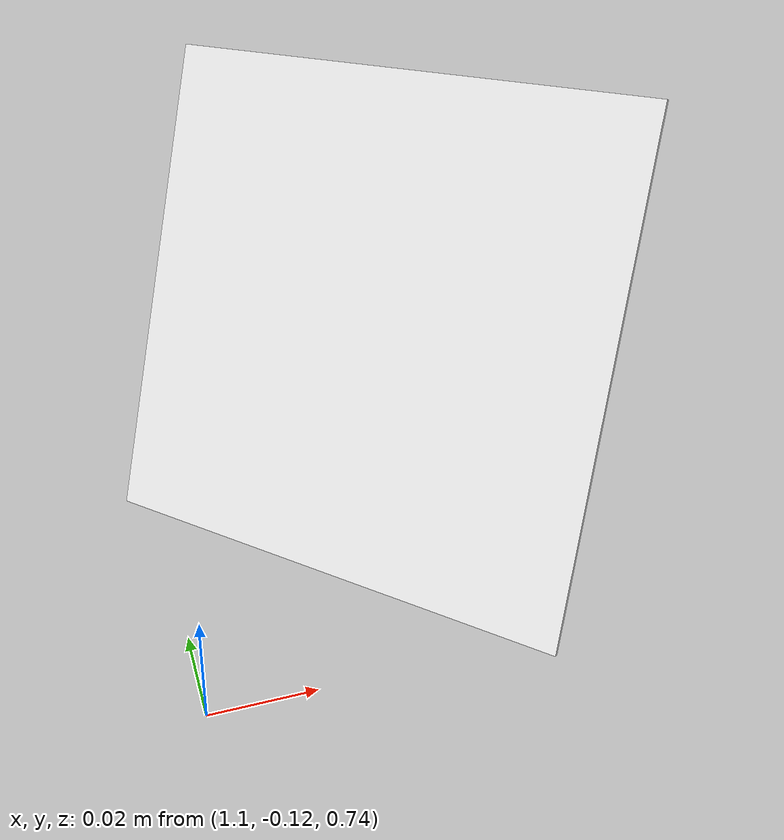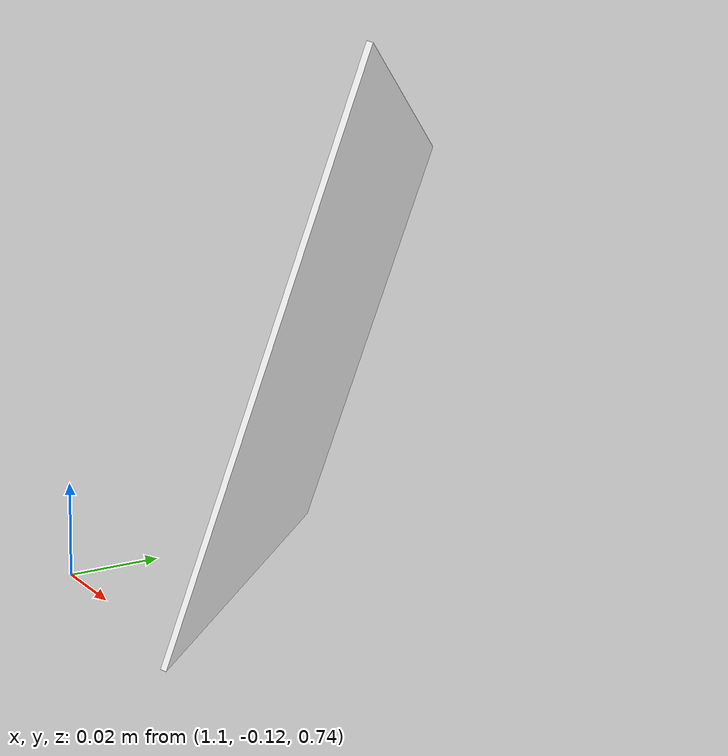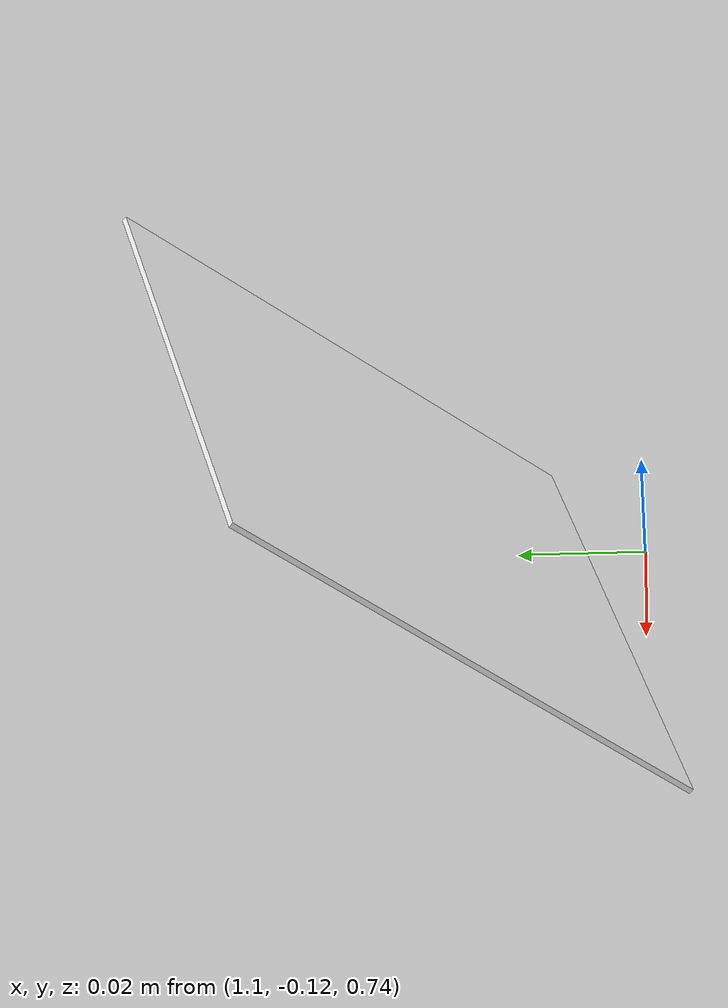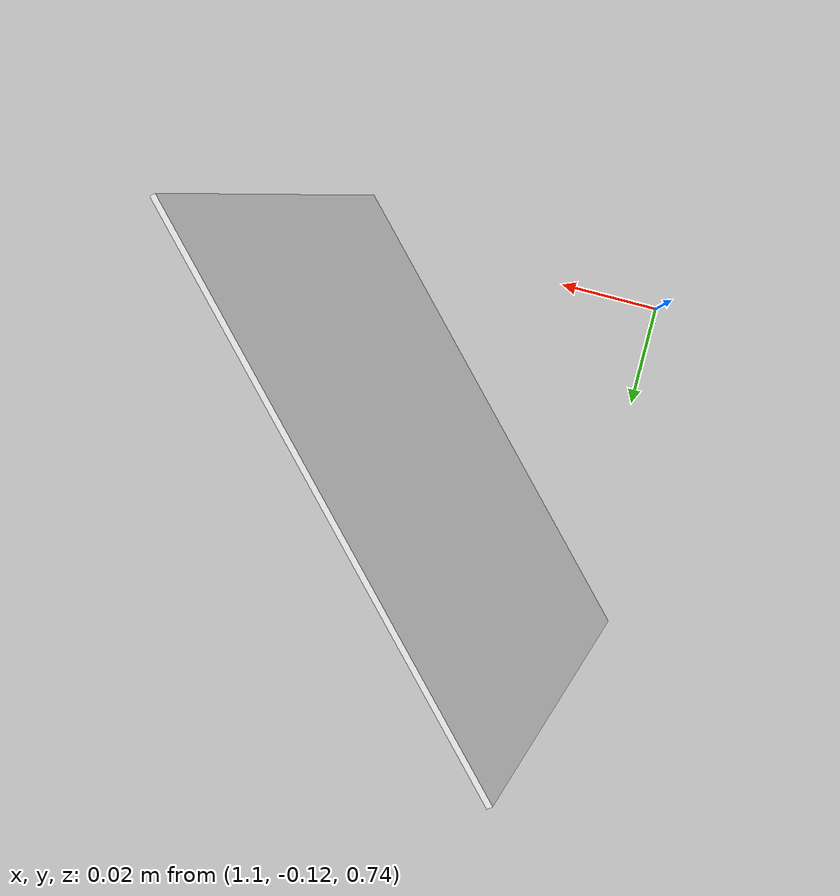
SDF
<?xml version="1.0" encoding="UTF-8"?>
<sdf version="1.9">
  <model name="arucotag">
    <static>true</static>
     <pose>1.14 -0.08 0.79 1.90 0.00 2.33</pose><link name="base">
      <visual name="tag_visual">
        <geometry>
          <box>
            <size>0.1 0.1 0.001</size>
          </box>
        </geometry>
        <material>
          <ambient>1 1 1 1</ambient>
          <diffuse>1 1 1 1</diffuse>
          <pbr>
            <metal>
              <albedo_map>model://arucotag/aruco_iiwa.png</albedo_map>
            </metal>
          </pbr>
        </material>
      </visual>
      <collision name="tag_collision">
        <geometry>
          <box>
            <size>0.1 0.1 0.001</size>
          </box>
        </geometry>
      </collision>
    </link>
  </model>
</sdf>
